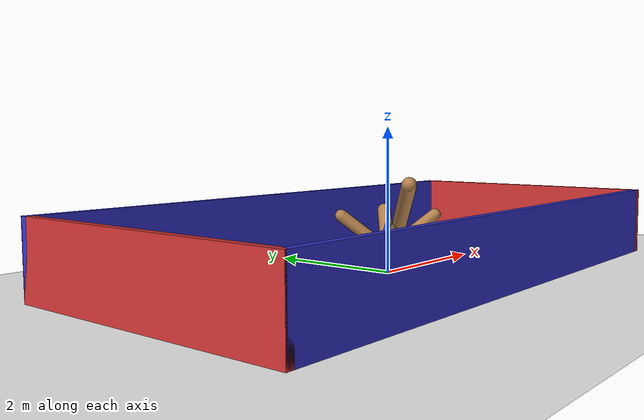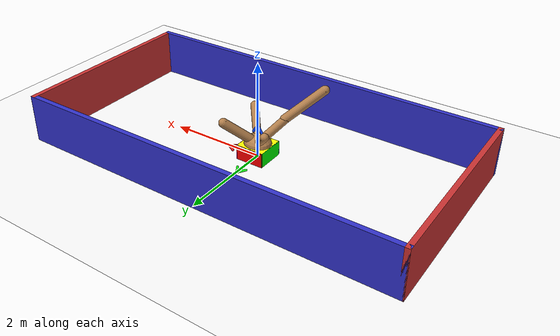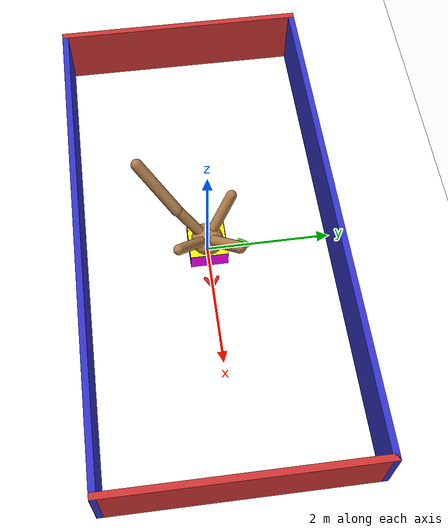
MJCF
<mujoco model="dex-gripper">
  <asset>
    <texture name="skybox" type="skybox" builtin="gradient" rgb1=".2 .3 .4" rgb2="0 0 0" width="800" height="800" mark="random" markrgb="1 1 1"/>
    <texture name="grid" type="2d" builtin="checker" rgb1=".2 .1 .2" rgb2=".3 .2 .3" width="300" height="300" mark="edge" markrgb=".3 .2 .3"/>
    <material name="grid" texture="grid" texrepeat="1 1" texuniform="true" reflectance=".2"/>
    <material name="self" rgba=".7 .5 .3 1"/>
  </asset>
  <visual>
    <headlight ambient=".4 .4 .4" diffuse=".8 .8 .8" specular="0.1 0.1 0.1"/>
    <map znear=".001"/>
    <quality shadowsize="16384"/>
  </visual>
  <compiler coordinate="local" angle="degree" inertiafromgeom="true"/>
  <option integrator="RK4" timestep="0.01"/>
  <default>
    <joint armature="1" damping="1" limited="true"/>
    <geom conaffinity="0" condim="3" density="5.0" friction="1 0.5 0.5" margin="0.01" rgba=".7 .5 .3 1"/>
  </default>
  <worldbody>
    <light cutoff="100" diffuse="1 1 1" dir="0.3 0 -1.3" directional="true" exponent="1" pos="-30 0 130" specular=".1 .1 .1"/>
    <geom conaffinity="1" condim="3" name="floor" pos="0 0 0" rgba="1 1 1 1" size="200 200 .125" type="plane" material="grid"/>
    <!-- Fixed gripper base: no root slide joints anymore -->
    <body name="0" pos="0 0 0.3" gravcomp="1">
      <camera name="track" mode="fixed" pos="0 10 5" quat="0 0 0.547 0.892"/>
      <geom pos="0 0 0" size="0.286348 0.258309 0.188156" type="ellipsoid"/>
      <!-- Arm 1: flipped upward -->
      <body name="1" pos="0 0 0" gravcomp="1">
        <joint axis="-0.707107 0.707107 0" name="1_joint" pos="0 0 0" range="-45 45" type="hinge" damping="0"/>
        <geom fromto="-0.071973 -0.064477 -0.072902 0.49363 0.442218 0.5" size="0.094434 0.094434 0.094434" type="capsule"/>
      </body>
      <!-- Arm 2: flipped upward -->
      <body name="2" pos="0 0 0" gravcomp="1">
        <joint axis="-0.707107 -0.707107 0" name="2_joint" pos="0 0 0" range="-45 45" type="hinge" damping="0"/>
        <geom fromto="0.06446 -0.062307 -0.070343 -0.458184 0.442882 0.5" size="0.085183 0.085183 0.085183" type="capsule"/>
      </body>
      <!-- Arm 3: flipped upward -->
      <body name="3" pos="0 0 0" gravcomp="1">
        <joint axis="0.707107 -0.707107 0" name="3_joint" pos="0 0 0" range="-45 45" type="hinge" damping="0"/>
        <geom fromto="0.038007 0.048907 -0.048936 -0.388335 -0.499713 0.5" size="0.084818 0.084818 0.084818" type="capsule"/>
        <body name="13" pos="-0.388335 -0.499713 0.5" gravcomp="1">
          <joint axis="0.707107 -0.707107 0" name="13_joint" pos="0 0 0" range="-45 45" type="hinge" damping="0"/>
          <geom fromto="0.062206 0.062183 -0.063315 -0.491246 -0.491059 0.5" size="0.09294 0.09294 0.09294" type="capsule"/>
        </body>
      </body>
      <!-- Arm 4: flipped upward -->
      <body name="4" pos="0 0 0" gravcomp="1">
        <joint axis="0.707107 0.707107 0" name="4_joint" pos="0 0 0" range="-45 45" type="hinge" damping="0"/>
        <geom fromto="-0.04571 0.053607 -0.054466 0.419621 -0.492112 0.5" size="0.082195 0.082195 0.082195" type="capsule"/>
      </body>
    </body>
    <!-- Box starts above the gripper -->
    <body name="box" pos="0 0 0">
      <freejoint name="box_joint"/>
      <!-- Top (Yellow) -->
      <geom name="box_top" type="box" pos="0 0 0.295" size="0.3 0.3 0.005" rgba="1 1 0 1" density="10" friction="2.5 0.1 0.05" contype="1" conaffinity="1"/>
      <!-- Bottom (White) -->
      <geom name="box_bottom" type="box" pos="0 0 -0.295" size="0.3 0.3 0.005" rgba="1 1 1 1" density="10" friction="2.5 0.1 0.05" contype="1" conaffinity="1"/>
      <!-- Front (Red) -->
      <geom name="box_front" type="box" pos="0 0.295 0" size="0.3 0.005 0.3" rgba="1 0 0 1" density="10" friction="2.5 0.1 0.05" contype="1" conaffinity="1"/>
      <!-- Back (Blue) -->
      <geom name="box_back" type="box" pos="0 -0.295 0" size="0.3 0.005 0.3" rgba="0 0 1 1" density="10" friction="2.5 0.1 0.05" contype="1" conaffinity="1"/>
      <!-- Left (Green) -->
      <geom name="box_left" type="box" pos="-0.295 0 0" size="0.005 0.3 0.3" rgba="0 1 0 1" density="10" friction="2.5 0.1 0.05" contype="1" conaffinity="1"/>
      <!-- Right (Magenta) -->
      <geom name="box_right" type="box" pos="0.295 0 0" size="0.005 0.3 0.3" rgba="1 0 1 1" density="10" friction="2.5 0.1 0.05" contype="1" conaffinity="1"/>
    </body>
    <!-- RGB arrows visualize the target orientation and never participate in collisions. -->
    <body name="goal_orientation_frame" pos="0 0 0">
      <!-- Goal X axis (red). -->
      <geom name="goal_axis_x_shaft" type="capsule" fromto="0 0 0 0.7 0 0" size="0.018" rgba="1 0.1 0.1 0.9" contype="0" conaffinity="0"/>
      <geom name="goal_axis_x_head_pos" type="capsule" fromto="0.7 0 0 0.54 0.1 0" size="0.025" rgba="1 0.1 0.1 0.9" contype="0" conaffinity="0"/>
      <geom name="goal_axis_x_head_neg" type="capsule" fromto="0.7 0 0 0.54 -0.1 0" size="0.025" rgba="1 0.1 0.1 0.9" contype="0" conaffinity="0"/>
      <!-- Goal Y axis (green). -->
      <geom name="goal_axis_y_shaft" type="capsule" fromto="0 0 0 0 0.7 0" size="0.018" rgba="0.1 1 0.1 0.9" contype="0" conaffinity="0"/>
      <geom name="goal_axis_y_head_pos" type="capsule" fromto="0 0.7 0 0.1 0.54 0" size="0.025" rgba="0.1 1 0.1 0.9" contype="0" conaffinity="0"/>
      <geom name="goal_axis_y_head_neg" type="capsule" fromto="0 0.7 0 -0.1 0.54 0" size="0.025" rgba="0.1 1 0.1 0.9" contype="0" conaffinity="0"/>
      <!-- Goal Z axis (blue). -->
      <geom name="goal_axis_z_shaft" type="capsule" fromto="0 0 0 0 0 0.7" size="0.018" rgba="0.1 0.3 1 0.9" contype="0" conaffinity="0"/>
      <geom name="goal_axis_z_head_pos" type="capsule" fromto="0 0 0.7 0.1 0 0.54" size="0.025" rgba="0.1 0.3 1 0.9" contype="0" conaffinity="0"/>
      <geom name="goal_axis_z_head_neg" type="capsule" fromto="0 0 0.7 -0.1 0 0.54" size="0.025" rgba="0.1 0.3 1 0.9" contype="0" conaffinity="0"/>
    </body>
    <body name="box_walls" pos="0 0 0">
      <geom name="wall_left" type="box" pos="-4.0 0 0.5" size="0.05 2.05 0.5" rgba="0.8 0.2 0.2 1" contype="1" conaffinity="1"/>
      <geom name="wall_right" type="box" pos="4.0 0 0.5" size="0.05 2.05 0.5" rgba="0.8 0.2 0.2 1" contype="1" conaffinity="1"/>
      <geom name="wall_front" type="box" pos="0 2.0 0.5" size="4.05 0.05 0.5" rgba="0.2 0.2 0.8 1" contype="1" conaffinity="1"/>
      <geom name="wall_back" type="box" pos="0 -2.0 0.5" size="4.05 0.05 0.5" rgba="0.2 0.2 0.8 1" contype="1" conaffinity="1"/>
    </body>
  </worldbody>
  <actuator>
    <!-- Only the finger joints remain actuated -->
    <motor ctrllimited="true" ctrlrange="-1.0 1.0" joint="1_joint" gear="78.722841" name="1_joint"/>
    <motor ctrllimited="true" ctrlrange="-1.0 1.0" joint="2_joint" gear="127.242424" name="2_joint"/>
    <motor ctrllimited="true" ctrlrange="-1.0 1.0" joint="3_joint" gear="93.854579" name="3_joint"/>
    <motor ctrllimited="true" ctrlrange="-1.0 1.0" joint="4_joint" gear="98.886495" name="4_joint"/>
    <motor ctrllimited="true" ctrlrange="-1.0 1.0" joint="13_joint" gear="99.337339" name="13_joint"/>
  </actuator>
</mujoco>
